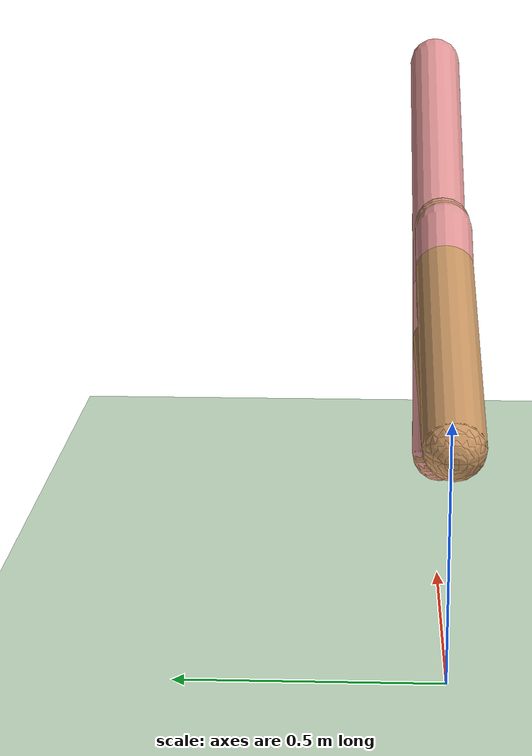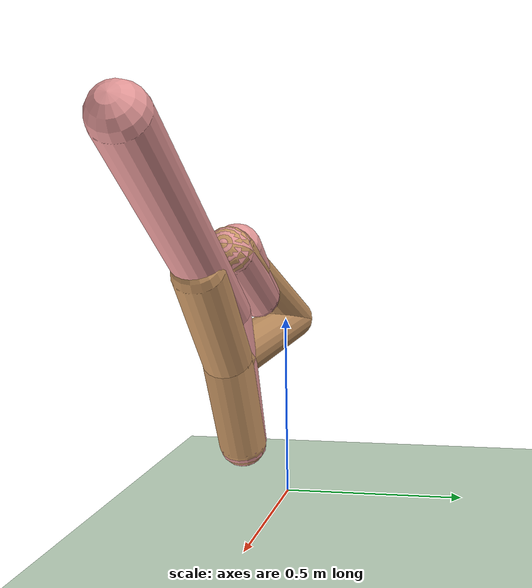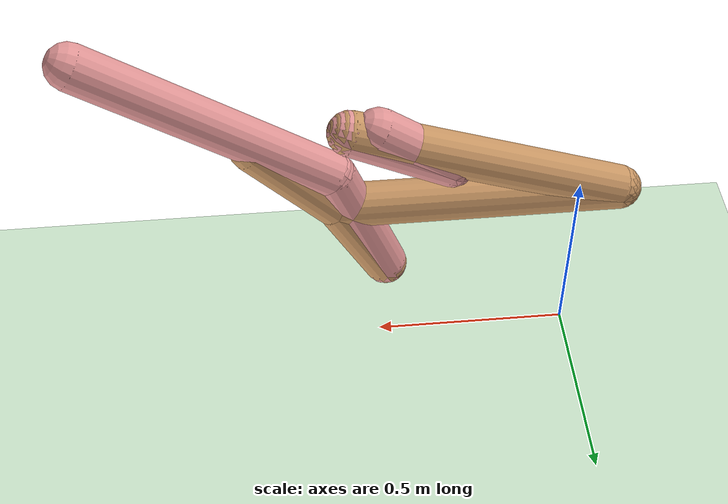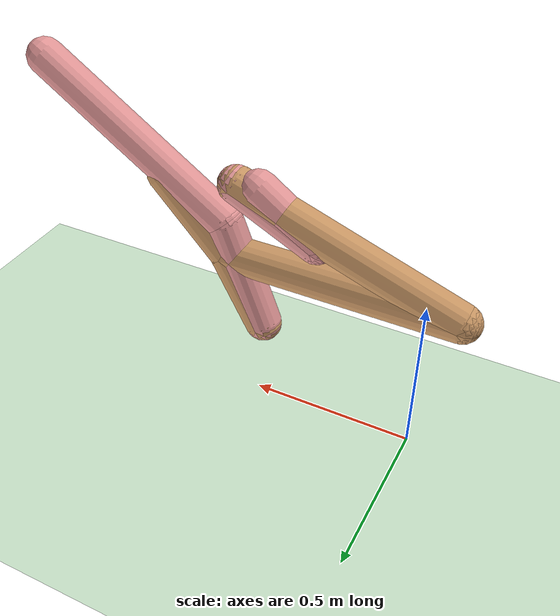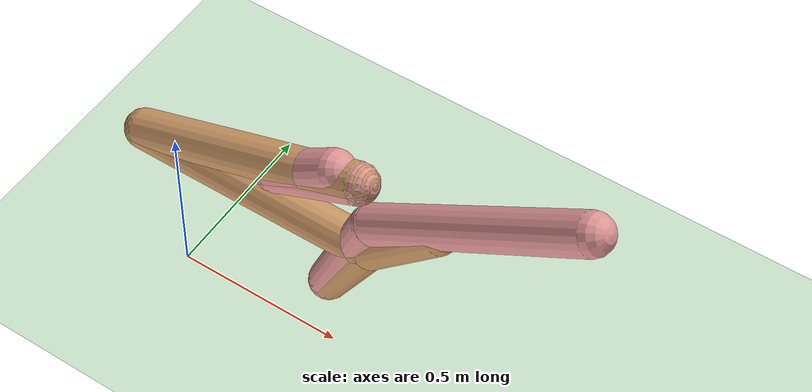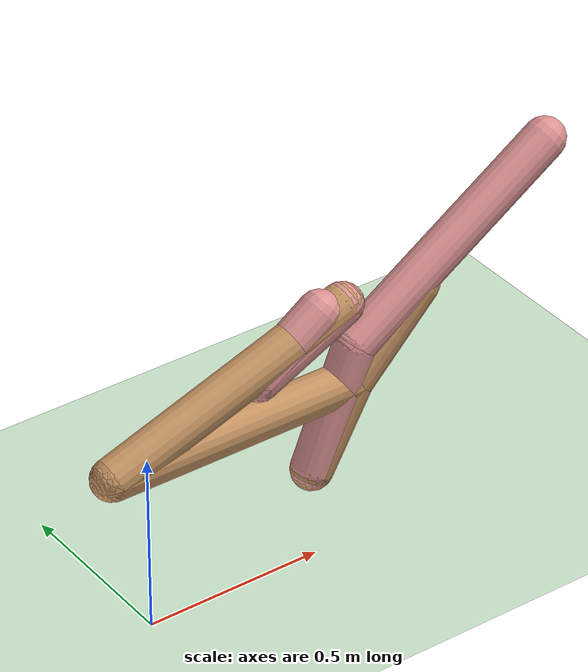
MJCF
<mujoco model="cheetah">
    <compiler angle="radian" coordinate="local" inertiafromgeom="true" settotalmass="14"/>
    <default>
      <joint armature=".1" damping=".01" limited="true" solimplimit="0 .8 .03" solreflimit=".02 1" stiffness="8"/>
      <geom conaffinity="0" condim="3" contype="1" friction=".4 .1 .1" rgba="0.8 0.6 .4 1" solimp="0.0 0.8 0.01" solref="0.02 1"/>
      <motor ctrllimited="true" ctrlrange="-1 1"/>
    </default>
    <size nstack="300000" nuser_geom="1"/>
    <option gravity="0 0 -9.81" timestep="0.01"/>
    <asset>
      <texture builtin="gradient" height="100" rgb1="1 1 1" rgb2="0 0 0" type="skybox" width="100"/>
      <texture builtin="flat" height="1278" mark="cross" markrgb="1 1 1" name="texgeom" random="0.01" rgb1="0.8 0.6 0.4" rgb2="0.8 0.6 0.4" type="cube" width="127"/>
      <texture builtin="checker" height="100" name="texplane" rgb1="0 0 0" rgb2="0.8 0.8 0.8" type="2d" width="100"/>
      <material name="MatPlane" reflectance="0.5" shininess="1" specular="1" texrepeat="60 60" texture="texplane"/>
      <material name="geom" texture="texgeom" texuniform="true"/>
    </asset>
    <worldbody>
    <light cutoff="100" diffuse="1 1 1" dir="-0 0 -1.3" directional="true" exponent="1" pos="0 0 1.3" specular=".1 .1 .1"/>
    <geom conaffinity="1" condim="3" material="MatPlane" name="floor" pos="0 0 0" rgba="0.8 0.9 0.8 1" size="40 40 40" type="plane"/>
    <body name="torso" pos="0 0 0.48863999977648265">
      <joint armature="0" axis="1 0 0" damping="0" limited="false" name="ignorex" pos="0 0 0" stiffness="0" type="slide"/>
      <joint armature="0" axis="0 0 1" damping="0" limited="false" name="ignorez" pos="0 0 0" stiffness="0" type="slide"/>
      <joint armature="0" axis="0 1 0" damping="0" limited="false" name="ignorey" pos="0 0 0" stiffness="0" type="hinge"/>
      <geom fromto="-0.09999999999999998 0 0 0.6099999997764826 0 0" name="torso" size="0.05599999977648258" type="capsule"/>
      <geom fromto="0.6099999997764826 0 0 0.8099999997764826 0 0.2099999997764826" name="head"  size="0.05599999977648258" type="capsule"/>

      <body name="bthigh" pos="-0.09999999999999998 0 0">
        <joint axis="0 1 0" damping="6" name="bthigh" pos="0 0 0" range="-.52 1.05" stiffness="240" type="hinge"/>
        <geom fromto = "0 0 0 0.67744 0 0.2377828177165985" name="bthigh" size="0.05599999977648258" type="capsule"/>
        <body name="bshin" pos="0.67744 0 0.2377828177165985">
          <joint axis="0 1 0" damping="4.5" name="bshin" pos="0 0 0" range="-.785 .785" stiffness="180" type="hinge"/>
          <geom fromto = "0 0 0 -0.2503429682087898 0 -0.12297000022351742" name="bshin" rgba="0.9 0.6 0.6 1" size="0.05599999977648258" type="capsule"/>
          <body name="bfoot" pos="-0.2503429682087898 0 -0.12297000022351742">
            <joint axis="0 1 0" damping="3" name="bfoot" pos="0 0 0" range="-.4 .785" stiffness="120" type="hinge"/>
            <geom fromto = "0 0 0 0.1821498949766159 0 0.12727139788627626" name="bfoot" rgba="0.9 0.6 0.6 1" size="0.05599999977648258" type="capsule"/>
          </body>
        </body>
      </body>

      <body name="fthigh" pos="0.6099999997764826 0 0">
        <joint axis="0 1 0" damping="4.5" name="fthigh" pos="0 0 0" range="-1.5 0.8" stiffness="180" type="hinge"/>
        <geom fromto = "0 0 0 -0.12217000022351743 0 -0.2208400002235174" name="fthigh" size="0.05599999977648258" type="capsule"/>
        <body name="fshin" pos = "-0.12217000022351743 0 -0.2208400002235174">
          <joint axis="0 1 0" damping="3" name="fshin" pos="0 0 0" range="-1.2 1.1" stiffness="120" type="hinge"/>
          <geom fromto = "0 0 0 0.12969999977648258 0 0.32503000000000004" rgba="0.9 0.6 0.6 1" size="0.05599999977648258" type="capsule"/>
          <body name="ffoot" pos="0.12969999977648258 0 0.32503000000000004">
            <joint axis="0 1 0" damping="1.5" name="ffoot" pos="0 0 0" range="-3.1 -0.3" stiffness="60" type="hinge"/>
            <geom fromto = "0 0 0 0.57905 0 0.38445" name="ffoot" rgba="0.9 0.6 0.6 1" size="0.05599999977648258" type="capsule"/>
          </body>
        </body>
      </body>
    </body>

    </worldbody>
    <actuator>
    <motor gear="120" joint="bthigh" name="bthigh"/>
    <motor gear="90" joint="bshin" name="bshin"/>
    <motor gear="60" joint="bfoot" name="bfoot"/>
    <motor gear="120" joint="fthigh" name="fthigh"/>
    <motor gear="60" joint="fshin" name="fshin"/>
    <motor gear="30" joint="ffoot" name="ffoot"/>
    </actuator>
    </mujoco>
